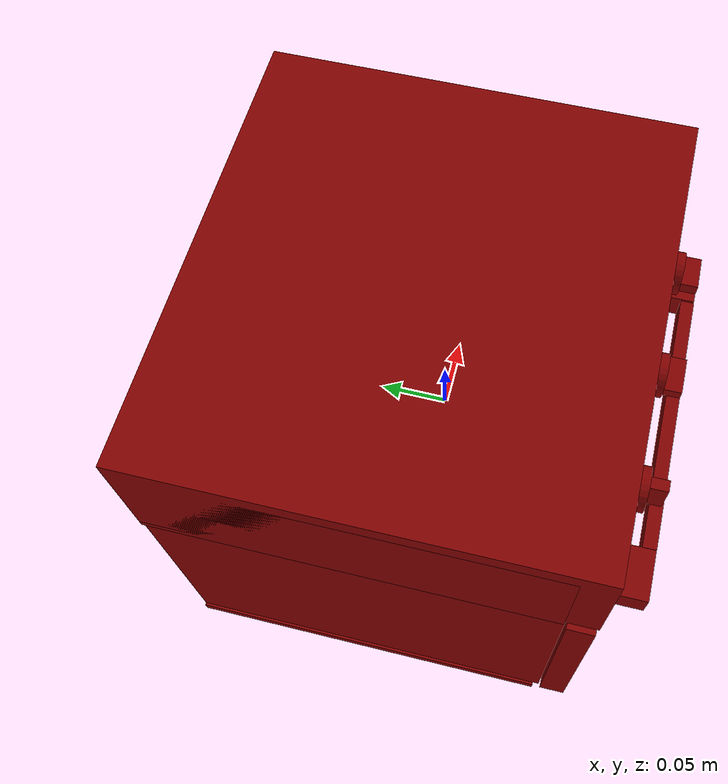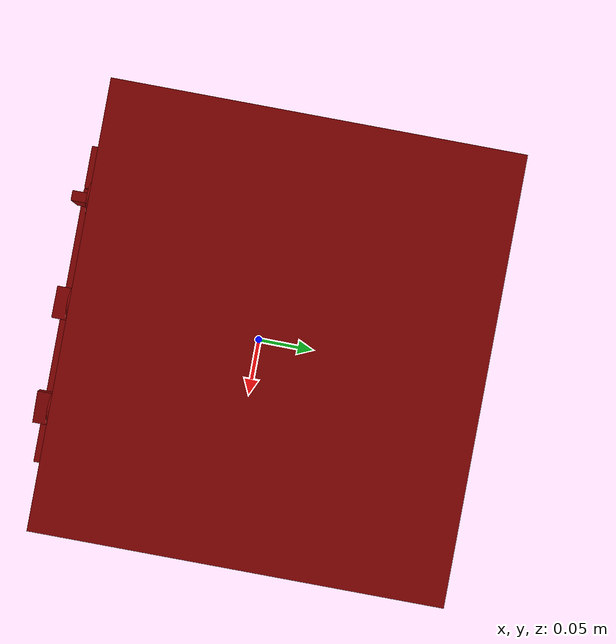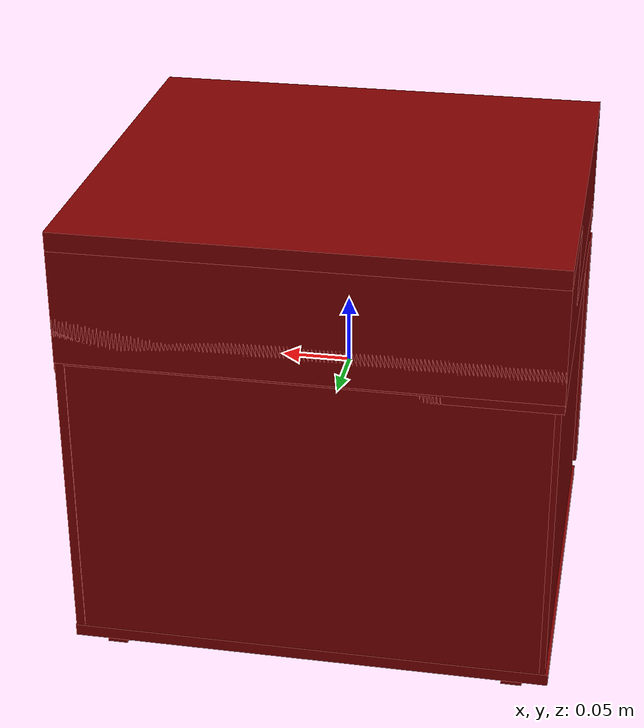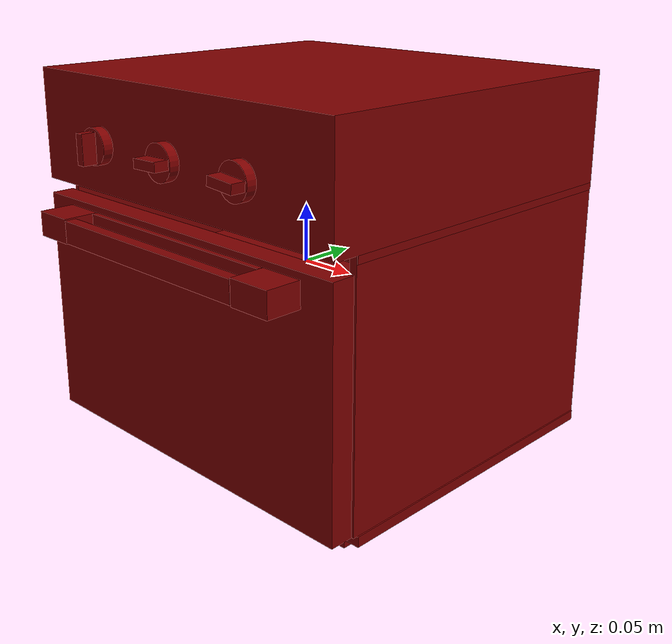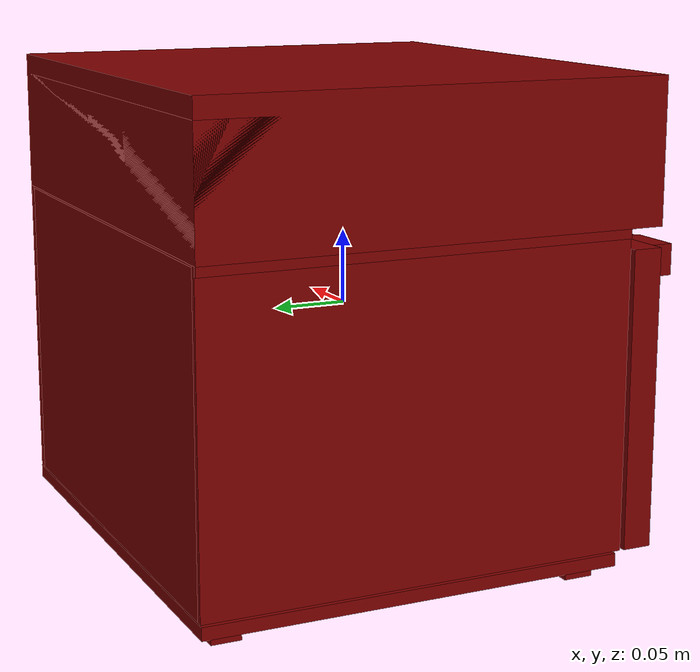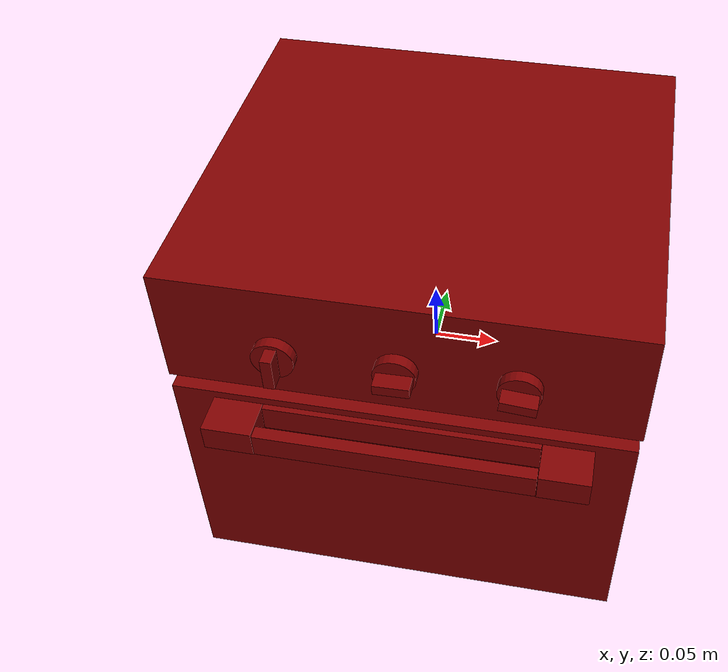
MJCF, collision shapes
<?xml version='1.0' encoding='UTF-8'?>
<mujoco model="model">
  <option timestep="0.002" gravity="0.0 0.0 -9.81"/>
  <compiler angle="radian"/>
  <asset>
    <mesh file="visuals/door.obj" name="door_vis"/>
    <mesh file="visuals/knob_function.obj" name="knob_function_vis"/>
    <mesh file="visuals/knob_temp.obj" name="knob_temp_vis"/>
    <mesh file="visuals/knob_time.obj" name="knob_time_vis"/>
    <mesh file="visuals/rack0.obj" name="rack0_vis"/>
    <mesh file="visuals/rack1.obj" name="rack1_vis"/>
    <mesh file="visuals/Body001.obj" name="Body001_vis"/>
    <mesh file="visuals/window.obj" name="window_vis"/>
    <texture file="visuals/T_BC001.png" name="Body001_material" type="2d"/>
    <material name="Body001_material" rgba="1 1 1 1.0" texture="Body001_material" shininess="0.40476077795028687" specular="1"/>
    <texture file="visuals/T_BC001.png" name="door_material" type="2d"/>
    <material name="door_material" rgba="1 1 1 1.0" texture="door_material" shininess="0.40476077795028687" specular="0.5"/>
    <texture file="visuals/T_BC001.png" name="window_material" type="2d"/>
    <material name="window_material" rgba="1 1 1 0.800000011920929" texture="window_material" shininess="0.5" specular="0.3103448502657381"/>
    <texture file="visuals/T_BC001.png" name="knob_function_material" type="2d"/>
    <material name="knob_function_material" rgba="1 1 1 1.0" texture="knob_function_material" shininess="0.40476077795028687" specular="0.3103448502657381"/>
    <texture file="visuals/T_BC001.png" name="knob_temp_material" type="2d"/>
    <material name="knob_temp_material" rgba="1 1 1 1.0" texture="knob_temp_material" shininess="0.40476077795028687" specular="0.3103448502657381"/>
    <texture file="visuals/T_BC001.png" name="knob_time_material" type="2d"/>
    <material name="knob_time_material" rgba="1 1 1 1.0" texture="knob_time_material" shininess="0.40476077795028687" specular="0.3103448502657381"/>
    <texture file="visuals/T_BC001.png" name="rack0_material" type="2d"/>
    <material name="rack0_material" rgba="1 1 1 1.0" texture="rack0_material" shininess="0.40476077795028687" specular="2"/>
    <texture file="visuals/T_BC001.png" name="rack1_material" type="2d"/>
    <material name="rack1_material" rgba="1 1 1 1.0" texture="rack1_material" shininess="0.40476077795028687" specular="2"/>
  </asset>
  <default>
    <default class="visual">
      <geom conaffinity="0" contype="0" group="1" type="mesh"/>
    </default>
    <default class="collision">
      <geom group="0" rgba="0.5 0 0 0.5"/>
    </default>
    <default class="spawn">
      <geom group="0" rgba="1 1 1 0.5" contype="0" conaffinity="0"/>
      <site group="0" rgba="1 1 1 0.5"/>
    </default>
    <default class="region">
      <geom group="1" conaffinity="0" contype="0" rgba="0 1 0 0"/>
    </default>
  </default>
  <worldbody>
    <body>
      <body name="object">
        <geom mesh="Body001_vis" type="mesh" solimp="0.998 0.998 0.001" solref="0.001 1" friction="0.95 0.3 0.1" class="visual" material="Body001_material"/>
        <geom class="collision" type="box" pos="0.00012882 0.01420518 0.11534687" size="0.16799390316009521 0.15449689328670502 0.046898286789655685" quat="1.0 0.0 0.0 0.0"/>
        <geom class="collision" type="box" pos="0.00012882 0.02726752 -0.14655122" size="0.16799390316009521 0.14143456518650055 0.004279122222214937" quat="1.0 0.0 0.0 0.0"/>
        <geom class="collision" type="box" pos="0.16441175 0.02497175 -0.03654816" size="0.003169992472976446 0.14373032748699188 0.10511252284049988" quat="1.0 0.0 0.0 0.0"/>
        <geom class="collision" type="box" pos="-0.16389185 0.02497175 -0.03654816" size="0.0020520328544080257 0.14373034238815308 0.10511252284049988" quat="1.0 0.0 0.0 0.0"/>
        <geom class="collision" type="box" pos="-0.00044740 0.15515981 -0.03722627" size="0.1614246666431427 0.013542283326387405 0.10444756597280502" quat="1.0 0.0 0.0 0.0"/>
        <geom class="collision" type="box" pos="0.15490256 0.01932788 -0.08626840" size="0.00484692445024848 0.12642931938171387 0.0063050612807273865" quat="1.0 0.0 0.0 0.0"/>
        <geom class="collision" type="box" pos="0.15490256 0.01932788 -0.02417444" size="0.00484692445024848 0.12642931938171387 0.0063050612807273865" quat="1.0 0.0 0.0 0.0"/>
        <geom class="collision" type="box" pos="-0.15590519 0.01932788 -0.02417444" size="0.00484692445024848 0.12642931938171387 0.0063050612807273865" quat="1.0 0.0 0.0 0.0"/>
        <geom class="collision" type="box" pos="-0.15590519 0.01932788 -0.08626840" size="0.00484692445024848 0.12642931938171387 0.0063050612807273865" quat="1.0 0.0 0.0 0.0"/>
        <geom class="collision" type="box" pos="-0.14218968 -0.09861088 -0.15674095" size="0.007177562452852726 0.009858162142336369 0.0062631466425955296" quat="1.0 0.0 0.0 0.0"/>
        <geom class="collision" type="box" pos="0.14191398 -0.09861088 -0.15674095" size="0.007177562452852726 0.009858162142336369 0.0062631466425955296" quat="1.0 0.0 0.0 0.0"/>
        <geom class="collision" type="box" pos="0.14191398 0.14639728 -0.15674095" size="0.007177562452852726 0.009858162142336369 0.0062631466425955296" quat="1.0 0.0 0.0 0.0"/>
        <geom class="collision" type="box" pos="-0.14218968 0.14639728 -0.15674095" size="0.007177562452852726 0.009858162142336369 0.0062631466425955296" quat="1.0 0.0 0.0 0.0"/>
        <geom class="collision" type="box" pos="0.00012882 0.02535772 0.10557526" size="0.16799390316009521 0.14334434270858765 0.04326467961072922" quat="1.0 0.0 0.0 0.0"/>
        <body name="door">
          <joint axis="1.0 0.0 0.0" pos="0.00000000 -0.13047843 -0.13818772" limited="true" name="door_joint" range="0.0 1.4707963267948966" type="hinge" damping="1" frictionloss="1" armature=".01" stiffness="0.4" springref="-2"/>
          <geom mesh="door_vis" type="mesh" solimp="0.998 0.998 0.001" solref="0.001 1" friction="0.95 0.3 0.1" class="visual" material="door_material"/>
          <geom class="collision" type="box" pos="-0.00087495 -0.12997916 -0.04274082" size="0.1676837056875229 0.00972924567759037 0.09801363945007324" quat="1.0 0.0 0.0 0.0" name="door_main"/>
          <geom class="collision" type="box" pos="0.00035337 -0.16575319 0.03976462" size="0.1005232185125351 0.004941294435411692 0.009371851570904255" quat="1.0 0.0 0.0 0.0" name="door_handle_main"/>
          <geom class="collision" type="box" pos="0.00035337 -0.14290244 0.03982630" size="0.10052324086427689 0.0023148423060774803 0.010362664237618446" quat="1.0 0.0 0.0 0.0"/>
          <geom class="collision" type="box" pos="0.11953706 -0.15551204 0.03982630" size="0.01818745955824852 0.014924406073987484 0.010362666100263596" quat="1.0 0.0 0.0 0.0"/>
          <geom class="collision" type="box" pos="-0.11890768 -0.15551204 0.03982630" size="0.01818746142089367 0.014924408867955208 0.01036266703158617" quat="1.0 0.0 0.0 0.0"/>
          <body name="window">
            <geom mesh="window_vis" type="mesh" solimp="0.998 0.998 0.001" solref="0.001 1" friction="0.95 0.3 0.1" class="visual" material="window_material"/>
            <geom class="collision" type="box" pos="-0.00127726 -0.13381255 -0.04583720" size="0.10990264266729355 0.004647086374461651 0.05809442326426506" quat="1.0 0.0 0.0 0.0"/>
          </body>
        </body>
        <body name="knob_function">
          <joint axis="0.0 1.0 0.0" pos="0.08303131 -0.14982594 0.10834952" limited="true" name="knob_function_joint" range="0.0 3.2288591161895095" type="hinge" damping="0.05" armature="1" frictionloss="0.75"/>
          <geom mesh="knob_function_vis" type="mesh" solimp="0.998 0.998 0.001" solref="0.001 1" friction="0.95 0.3 0.1" class="visual" material="knob_function_material"/>
          <geom class="collision" type="cylinder" pos="0.08305854 -0.14648321 0.10843379" size="0.015089793130755424 0.004180982243269682" quat="0.29001113772392273 0.29001107811927795 -0.6448981761932373 0.6448980569839478" friction="100 0.5 0.01"/>
          <geom class="collision" type="box" pos="0.08346461 -0.15613585 0.10854064" size="0.003915501292794943 0.006732615176588297 0.012667737901210785" quat="0.6758393049240112 0.0 0.7370489835739136 0.0" name="knob_function_main" friction="100 0.5 0.01"/>
        </body>
        <body name="knob_temp">
          <joint axis="0.0 1.0 0.0" pos="-0.00024545 -0.14982594 0.10835014" limited="true" name="knob_temp_joint" range="0.0 3.2288591161895095" type="hinge" damping="0.05" armature="1" frictionloss="0.75"/>
          <geom mesh="knob_temp_vis" type="mesh" solimp="0.998 0.998 0.001" solref="0.001 1" friction="0.95 0.3 0.1" class="visual" material="knob_temp_material"/>
          <geom class="collision" type="cylinder" pos="-0.00036466 -0.14648321 0.10843379" size="0.015089793130755424 0.004180982243269682" quat="0.29001113772392273 0.29001107811927795 -0.6448981761932373 0.6448980569839478" friction="100 0.5 0.01"/>
          <geom class="collision" type="box" pos="0.00004141 -0.15613585 0.10866764" size="0.003915501292794943 0.006732615176588297 0.012667737901210785" quat="0.7162219882011414 0.0 0.697872519493103 0.0" name="knob_temp_main" friction="100 0.5 0.01"/>
        </body>
        <body name="knob_time">
          <joint axis="0.0 1.0 0.0" pos="-0.08396549 -0.14982594 0.10835014" limited="true" name="knob_time_joint" range="0.0 3.979350694547071" type="hinge" damping="0.05" armature="1" frictionloss="0.75"/>
          <geom mesh="knob_time_vis" type="mesh" solimp="0.998 0.998 0.001" solref="0.001 1" friction="0.95 0.3 0.1" class="visual" material="knob_time_material"/>
          <geom class="collision" type="cylinder" pos="-0.08402734 -0.14648321 0.10843379" size="0.015089793130755424 0.004180982243269682" quat="0.29001113772392273 0.29001107811927795 -0.6448981761932373 0.6448980569839478" friction="100 0.5 0.01"/>
          <geom class="collision" type="box" pos="-0.08362127 -0.15613585 0.10788441" size="0.003947669640183449 0.006732618901878595 0.01267764437943697" quat="1.0 0.0 0.0 0.0" name="knob_time_main" friction="100 0.5 0.01"/>
        </body>
        <body name="rack0">
          <geom class="region" name="reg_rack0" type="box" pos="-0.0008124350000000002 0.009307514999999995 -0.046675565" size="0.15049073500000001 0.111666355 0.028890175000000004"/>
          <joint axis="0.0 -1.0 0.0" pos="-0.00031710 0.00953702 -0.07821114" limited="true" name="rack0_joint" range="0.0 0.2" type="slide" damping="1" frictionloss="1" armature=".01" stiffness="0.05"/>
          <geom mesh="rack0_vis" type="mesh" solimp="0.998 0.998 0.001" solref="0.001 1" friction="0.95 0.3 0.1" class="visual" material="rack0_material"/>
          <geom class="collision" type="box" pos="-0.00037220 0.00931026 -0.07794599" size="0.15958759188652039 0.11407769471406937 0.0017067822627723217" quat="1.0 0.0 0.0 0.0"/>
        </body>
        <body name="rack1">
          <geom class="region" name="reg_rack1" type="box" pos="-0.0008124350000000002 0.009307514999999995 0.024289115" size="0.15049073500000001 0.111666355 0.038070955000000004"/>
          <joint axis="0.0 -1.0 0.0" pos="-0.00031710 0.00950399 -0.01604309" limited="true" name="rack1_joint" range="0.0 0.2" type="slide" damping="1" frictionloss="1" armature=".01" stiffness="0.05"/>
          <geom mesh="rack1_vis" type="mesh" solimp="0.998 0.998 0.001" solref="0.001 1" friction="0.95 0.3 0.1" class="visual" material="rack1_material"/>
          <geom class="collision" type="box" pos="-0.00037220 0.00931026 -0.01604456" size="0.15958759188652039 0.11407769471406937 0.0017067822627723217" quat="1.0 0.0 0.0 0.0"/>
        </body>
        <geom class="region" name="reg_main" type="box" pos="0.0 0.014407034999999999 0.0" size="0.17110747 0.157066955 0.16599622"/>
      </body>
    </body>
  </worldbody>
  <actuator>
    <motor name="door_joint_actuator" joint="door_joint" gear="50"/>
    <motor name="knob_function_joint_actuator" joint="knob_function_joint" gear="50"/>
    <motor name="knob_temp_joint_actuator" joint="knob_temp_joint" gear="50"/>
    <motor name="knob_time_joint_actuator" joint="knob_time_joint" gear="50"/>
    <motor name="rack0_joint_actuator" joint="rack0_joint" gear="50"/>
    <motor name="rack1_joint_actuator" joint="rack1_joint" gear="50"/>
  </actuator>
</mujoco>
